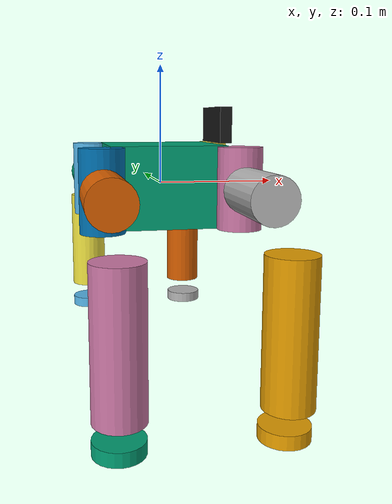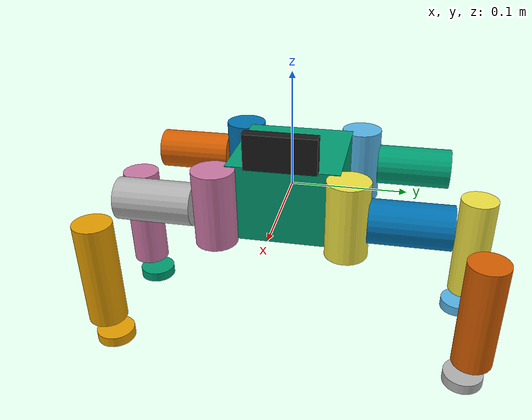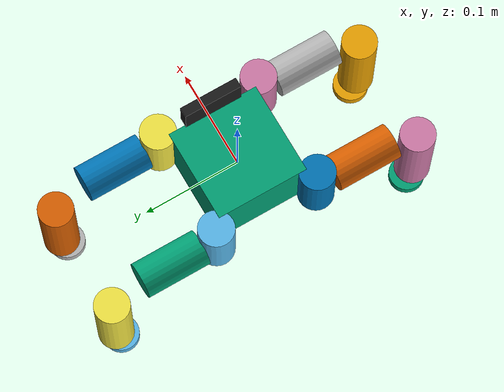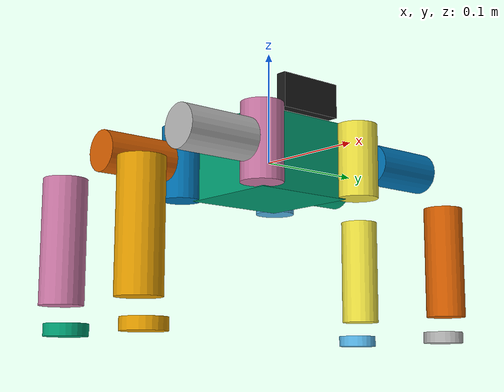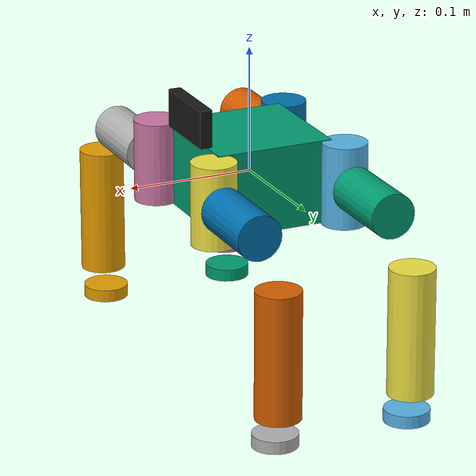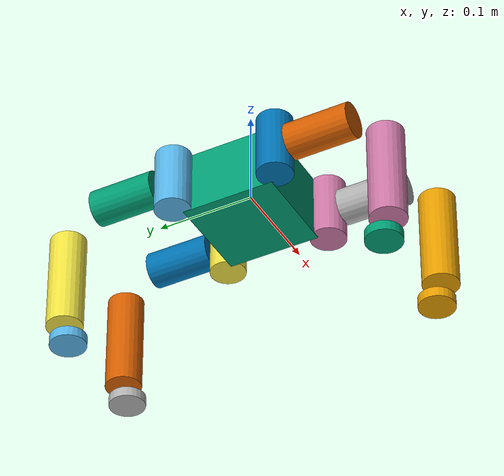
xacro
<?xml version="1.0" encoding="utf-8"?>

<robot xmlns:xacro="http://www.ros.org/wiki/xacro" name="spiderbytes_v8">
<xacro:arg name="ros2_control_yaml" default=""/>
<xacro:include filename="$(find spiderbytes)/urdf/accessories/camera.urdf" />
  <!-- ================= BASE ================= -->
  <link name="base_link">
 <visual>
    <origin xyz="0 0 0" rpy="1.5708 0 0" />
    <geometry>
      <box size="0.095 0.067221 0.095"/>
    </geometry>
  </visual>
  <collision>
    <origin xyz="0 0 0" rpy="1.5708 0 0" />
    <geometry>
      <box size="0.095 0.067221 0.095"/>
    </geometry>
  </collision>
  <inertial>
    <origin xyz="0 0 0" rpy="1.5708 0 0" />
    <mass value="5.0"/>
    <inertia
      ixx="0.0221"
      iyy="0.0193"
      izz="0.0221"
      ixy="0"
      ixz="0"
      iyz="0"/>
  </inertial>
</link>

  <!-- HIP -->
  <link name="hip_fl">
    <visual>
    <geometry>
      <cylinder radius="0.018" length="0.066"/>
    </geometry>
  </visual>
  <collision>
    <geometry>
      <cylinder radius="0.018" length="0.066"/>
    </geometry>
  </collision>
  <inertial>
    <origin xyz="0 0 0"/>
    <mass value="0.2"/>
    <inertia
      ixx="0.000073"
      iyy="0.000072"
      izz="0.000072"
      ixy="0"
      ixz="0"
      iyz="0"/>
  </inertial>

  </link>

  <joint name="hip_joint_fl" type="revolute">
    <parent link="base_link"/>
    <child link="hip_fl"/>
    <origin xyz="0.055 0.055 0" rpy="0 0 1.5708"/>
    <axis xyz="0 0 1"/>
    <limit lower="-1.57" upper="1.57" effort="100" velocity="100"/>
  </joint>

  <!-- THIGH -->
  <link name="thigh_fl">
    <visual>
    <origin xyz="0.025 0 0" rpy="0 1.5708 0" />
    <geometry>
      <cylinder radius="0.018" length="0.066"/>
    </geometry>
  </visual>
  <collision>
      <origin xyz="0.025 0 0" rpy="0 1.5708 0"/>
    <geometry>
      <cylinder radius="0.018" length="0.066"/>
    </geometry>
  </collision>
  <inertial>
    <origin xyz="0 0 0" rpy="0 1.5708 0"/>
    <mass value="0.2"/>
    <inertia
      ixx="0.000073"
      iyy="0.000072"
      izz="0.000072"
      ixy="0"
      ixz="0"
      iyz="0"/>
  </inertial>

  </link>

  <joint name="knee_joint_fl" type="revolute">
    <parent link="hip_fl"/>
    <child link="thigh_fl"/>
    <origin xyz="0.025 0 0"/>
    <axis xyz="0 1 0"/>
    <limit lower="-1.5708" upper="1.5708" effort="100" velocity="100"/>
  </joint>

  <!-- LEG -->
  <link name="leg_fl">
    <visual>
    <origin xyz="0.045 0 -0.035"/>
    <geometry>
      <cylinder radius="0.018" length="0.102"/>
    </geometry>
  </visual>
  <collision>
  <origin xyz="0.045 0 -0.035"/>
    <geometry>
      <cylinder radius="0.018" length="0.102"/>
    </geometry>
  </collision>
  <inertial>
    <origin xyz="0 0 0" rpy="0 1.5708 0"/>
    <mass value="0.25"/>
    <inertia
      ixx="0.000045"
      iyy="0.00214525"
      izz="0.00214525"
      ixy="0"
      ixz="0"
      iyz="0"/>
  </inertial>

  </link>

  <joint name="leg_joint_fl" type="revolute">
    <parent link="thigh_fl"/>
    <child link="leg_fl"/>
    <origin xyz="0.045 0 -0.045"/>
    <axis xyz="0 1 0"/>
    <limit lower="-1.5708" upper="1.5708" effort="100" velocity="100"/>
  </joint>

  <!-- FRONT RIGHT -->
  <joint name="hip_joint_fr" type="revolute">
    <parent link="base_link"/>
    <child link="hip_fr"/>
    <origin xyz="0.055 -0.055 0" rpy="0 0 -1.5708"/>
    <axis xyz="0 0 1"/>
    <limit lower="-1.5708" upper="1.5708" effort="100" velocity="100"/>
  </joint>
  <link name="hip_fr">
   <visual>
    <geometry>
      <cylinder radius="0.018" length="0.066"/>
    </geometry>
  </visual>
  <collision>
    <geometry>
      <cylinder radius="0.018" length="0.066"/>
    </geometry>
  </collision>
  <inertial>
    <origin xyz="0 0 0"/>
    <mass value="0.2"/>
    <inertia
      ixx="0.000073"
      iyy="0.000072"
      izz="0.000072"
      ixy="0"
      ixz="0"
      iyz="0"/>
  </inertial>
    </link>

  <joint name="knee_joint_fr" type="revolute">
    <parent link="hip_fr"/>
    <child link="thigh_fr"/>
    <origin xyz="0.025 0 0"/>
    <axis xyz="0 1 0"/>
    <limit lower="-1.5708" upper="1.5708" effort="100" velocity="100"/>
  </joint>
  <link name="thigh_fr"> <visual>
  <origin xyz="0.025 0 0" rpy="0 1.5708 0"/>
    <geometry>
      <cylinder radius="0.018" length="0.066"/>
    </geometry>
  </visual>
  <collision>
   <origin xyz="0.025 0 0" rpy="0 1.5708 0"/>
    <geometry>
      <cylinder radius="0.018" length="0.066"/>
    </geometry>
  </collision>
  <inertial>
    <origin xyz="0 0 0"/>
    <mass value="0.2"/>
    <inertia
      ixx="0.000073"
      iyy="0.000072"
      izz="0.000072"
      ixy="0"
      ixz="0"
      iyz="0"/>
  </inertial>
  </link>

  <joint name="leg_joint_fr" type="revolute">
    <parent link="thigh_fr"/>
    <child link="leg_fr"/>
    <origin xyz="0.045 0 -0.045"/>
    <axis xyz="0 1 0"/>
    <limit lower="-1.5708" upper="1.5708" effort="100" velocity="100"/>
  </joint>
  <link name="leg_fr"> <visual>
 <origin xyz="0.045 0 -0.035"/>
    <geometry>
      <cylinder radius="0.018" length="0.102"/>
    </geometry>
  </visual>
  <collision>
 <origin xyz="0.045 0 -0.035"/>
    <geometry>
      <cylinder radius="0.018" length="0.102"/>
    </geometry>
  </collision>
  <inertial>
    <origin xyz="0 0 0" rpy="0 1.5708 0"/>
    <mass value="0.25"/>
    <inertia
      ixx="0.000045"
      iyy="0.00214525"
      izz="0.00214525"
      ixy="0"
      ixz="0"
      iyz="0"/>
  </inertial>
  </link>

  <!-- REAR LEFT -->
  <joint name="hip_joint_rl" type="revolute">
    <parent link="base_link"/>
    <child link="hip_rl"/>
    <origin xyz="-0.055 0.055 0" rpy="0 0 1.5708"/>
    <axis xyz="0 0 1"/>
    <limit lower="-1.5708" upper="1.5708" effort="100" velocity="100"/>
  </joint>
  <link name="hip_rl"><visual>
    <geometry>
      <cylinder radius="0.018" length="0.066"/>
    </geometry>
  </visual>
  <collision>
    <geometry>
      <cylinder radius="0.018" length="0.066"/>
    </geometry>
  </collision>
  <inertial>
    <origin xyz="0 0 0"/>
    <mass value="0.2"/>
    <inertia
      ixx="0.000073"
      iyy="0.000072"
      izz="0.000072"
      ixy="0"
      ixz="0"
      iyz="0"/>
  </inertial>
  </link>

  <joint name="knee_joint_rl" type="revolute">
    <parent link="hip_rl"/>
    <child link="thigh_rl"/>
    <origin xyz="0.025 0 0"/>
    <axis xyz="0 1 0"/>
    <limit lower="-1.5708" upper="1.5708" effort="100" velocity="100"/>
  </joint>
  <link name="thigh_rl"> <visual>
  <origin xyz="0.025 0 0" rpy="0 1.5708 0"/>
    <geometry>
      <cylinder radius="0.018" length="0.066"/>
    </geometry>
  </visual>
  <collision>
   <origin xyz="0.025 0 0" rpy="0 1.5708 0"/>
    <geometry>
      <cylinder radius="0.018" length="0.066"/>
    </geometry>
  </collision>
  <inertial>
    <origin xyz="0 0 0" rpy="0 1.5708 0"/>
    <mass value="0.2"/>
    <inertia
      ixx="0.000073"
      iyy="0.000072"
      izz="0.000072"
      ixy="0"
      ixz="0"
      iyz="0"/>
  </inertial>
  </link>

  <joint name="leg_joint_rl" type="revolute">
    <parent link="thigh_rl"/>
    <child link="leg_rl"/>
       <origin xyz="0.045 0 -0.045"/>

    <axis xyz="0 1 0"/>
    <limit lower="-1.5708" upper="1.5708" effort="100" velocity="100"/>
  </joint>
  <link name="leg_rl"> <visual>
  <origin xyz="0.045 0 -0.035"/>
    <geometry>
      <cylinder radius="0.018" length="0.102"/>
    </geometry>
  </visual>
  <collision>
   <origin xyz="0.045 0 -0.035"/>
    <geometry>
      <cylinder radius="0.018" length="0.102"/>
    </geometry>
  </collision>
  <inertial>
    <origin xyz="0 0 0" rpy="0 1.5708 0"/>
    <mass value="0.25"/>
    <inertia
      ixx="0.000045"
      iyy="0.00214525"
      izz="0.00214525"
      ixy="0"
      ixz="0"
      iyz="0"/>
  </inertial>
  </link>

  <!-- REAR RIGHT -->
  <joint name="hip_joint_rr" type="revolute">
    <parent link="base_link"/>
    <child link="hip_rr"/>
    <origin xyz="-0.055 -0.055 0" rpy="0 0 -1.5708"/>
    <axis xyz="0 0 1"/>
    <limit lower="-1.5708" upper="1.5708" effort="100" velocity="100"/>
  </joint>
  <link name="hip_rr"><visual>
    <geometry>
      <cylinder radius="0.018" length="0.066"/>
    </geometry>
  </visual>
  <collision>
    <geometry>
      <cylinder radius="0.018" length="0.066"/>
    </geometry>
  </collision>
  <inertial>
    <origin xyz="0 0 0"/>
    <mass value="0.2"/>
    <inertia
      ixx="0.000073"
      iyy="0.000072"
      izz="0.000072"
      ixy="0"
      ixz="0"
      iyz="0"/>
  </inertial>
  </link>

  <joint name="knee_joint_rr" type="revolute">
    <parent link="hip_rr"/>
    <child link="thigh_rr"/>
    <origin xyz="0.025 0 0"/>
    <axis xyz="0 1 0"/>
    <limit lower="-1.5708" upper="1.5708" effort="100" velocity="100"/>
  </joint>
  <link name="thigh_rr"> <visual>
  <origin xyz="0.025 0 0" rpy="0 1.5708 0"/>
    <geometry>
      <cylinder radius="0.018" length="0.066"/>
    </geometry>
  </visual>
  <collision>
   <origin xyz="0.025 0 0" rpy="0 1.5708 0"/>
    <geometry>
      <cylinder radius="0.018" length="0.066"/>
    </geometry>
  </collision>
  <inertial>
    <origin xyz="0 0 0" rpy="0 1.5708 0"/>
    <mass value="0.2"/>
    <inertia
      ixx="0.000073"
      iyy="0.000072"
      izz="0.000072"
      ixy="0"
      ixz="0"
      iyz="0"/>
  </inertial>
  </link>

  <joint name="leg_joint_rr" type="revolute">
    <parent link="thigh_rr"/>
    <child link="leg_rr"/>
        <origin xyz="0.045 0 -0.045"/>

    <axis xyz="0 1 0"/>
    <limit lower="-1.5708" upper="1.5708" effort="100" velocity="100"/>
  </joint>
  <link name="leg_rr"> <visual>
    <origin xyz="0.045 0 -0.035"/>

    <geometry>
      <cylinder radius="0.018" length="0.102"/>
    </geometry>
  </visual>
  <collision>
    <origin xyz="0.045 0 -0.035"/>

    <geometry>
      <cylinder radius="0.018" length="0.102"/>
    </geometry>
  </collision>
  <inertial>
    <origin xyz="0 0 0" rpy="0 1.5708 0"/>
    <mass value="0.25"/>
    <inertia
      ixx="0.000045"
      iyy="0.00214525"
      izz="0.00214525"
      ixy="0"
      ixz="0"
      iyz="0"/>
  </inertial>
  </link>
<link name="foot_fl">
  <collision>
    <!-- Put it at the tip/bottom of your leg -->
    <geometry>

      <cylinder radius="0.018" length="0.01"/>
    </geometry>
  </collision>
  <visual>
    <geometry>

     <cylinder radius="0.018" length="0.01"/>
    </geometry>
  </visual>
  <inertial>
    <mass value="0.02"/>
    <inertia ixx="1e-5" iyy="1e-5" izz="1e-5" ixy="0" ixz="0" iyz="0"/>
  </inertial>
</link>

<link name="foot_fr">
  <collision>
    <!-- Put it at the tip/bottom of your leg -->
    <geometry>

     <cylinder radius="0.018" length="0.01"/>
    </geometry>
  </collision>
  <visual>
    <geometry>

      <cylinder radius="0.018" length="0.01"/>
    </geometry>
  </visual>
  <inertial>
    <mass value="0.02"/>
    <inertia ixx="1e-5" iyy="1e-5" izz="1e-5" ixy="0" ixz="0" iyz="0"/>
  </inertial>
</link>

<link name="foot_rl">
  <collision>
    <!-- Put it at the tip/bottom of your leg -->
    <geometry>

      <cylinder radius="0.018" length="0.01"/>
    </geometry>
  </collision>
  <visual>
    <geometry>

     <cylinder radius="0.018" length="0.01"/>
    </geometry>
  </visual>
  <inertial>
    <mass value="0.02"/>
    <inertia ixx="1e-5" iyy="1e-5" izz="1e-5" ixy="0" ixz="0" iyz="0"/>
  </inertial>
</link>

<link name="foot_rr">
  <collision>
    <!-- Put it at the tip/bottom of your leg -->
    <geometry>
     <cylinder radius="0.018" length="0.01"/>
    </geometry>
  </collision>
  <visual>
    <geometry>

      <cylinder radius="0.018" length="0.01"/>
    </geometry>
  </visual>
  <inertial>
    <mass value="0.02"/>
    <inertia ixx="1e-5" iyy="1e-5" izz="1e-5" ixy="0" ixz="0" iyz="0"/>
  </inertial>
</link>

<joint name="foot_joint_fl" type="continuous">
  <parent link="leg_fl"/>
  <child link="foot_fl"/>
  <axis xyz="1 0 0"/>
  <origin xyz="0.040 0 -0.105" rpy="0 0 0"/>
</joint>
<joint name="foot_joint_fr" type="continuous">
  <parent link="leg_fr"/>
  <child link="foot_fr"/>
  <axis xyz="-1 0 0"/>
  <origin xyz="0.040 0 -0.105" rpy="0 0 0"/>
</joint>
<joint name="foot_joint_rl" type="continuous">
  <parent link="leg_rl"/>
  <child link="foot_rl"/>
  <axis xyz="1 0 0"/>
  <origin xyz="0.040 0 -0.105" rpy="0 0 0"/>
</joint>
<joint name="foot_joint_rr" type="continuous">
  <parent link="leg_rr"/>
  <child link="foot_rr"/>
  <axis xyz="-1 0 0"/>
  <origin xyz="0.040 0 -0.105" rpy="0 0 0"/>
</joint>

  <gazebo reference="foot_fl"><mu1>5</mu1><mu2>5</mu2></gazebo>
  <gazebo reference="foot_fr"><mu1>5</mu1><mu2>5</mu2></gazebo>
  <gazebo reference="foot_rr"><mu1>5</mu1><mu2>5</mu2></gazebo>
  <gazebo reference="foot_rl"><mu1>5</mu1><mu2>5</mu2></gazebo>

    <gazebo>
        <plugin name="ignition::gazebo::systems::DiffDrive" filename="ignition-gazebo-diff-drive-system">
            <num_wheel_pairs>2</num_wheel_pairs>
            <!-- Wheel Information -->
            <left_joint>foot_joint_fl</left_joint>
            <left_joint>foot_joint_rl</left_joint>
            <right_joint>foot_joint_fr</right_joint>
            <right_joint>foot_joint_rr</right_joint>
            <wheel_separation>0.26</wheel_separation>
            <wheel_radius>0.018</wheel_radius>

            <!-- Limits -->
            <max_linear_acceleration>5</max_linear_acceleration>
            <min_linear_acceleration>-5</min_linear_acceleration>
            <max_angular_acceleration>4</max_angular_acceleration>
            <min_angular_acceleration>-4</min_angular_acceleration>

            <max_linear_velocity>5.0</max_linear_velocity>
            <min_linear_velocity>-5.0</min_linear_velocity>
            <max_angular_velocity>4.0</max_angular_velocity>
            <min_angular_velocity>-4.0</min_angular_velocity>
            <!-- Output -->
            <frame_id>odom</frame_id>
            <child_frame_id>base_link</child_frame_id>

            <!-- Topics -->
            <topic>/cmd_vel</topic>
            <odom_topic>/odometry/wheels</odom_topic>
            <tf_topic>/tf_gazebo</tf_topic>

        </plugin>

        <plugin filename="ignition-gazebo-joint-state-publisher-system" name="ignition::gazebo::systems::JointStatePublisher">
            <topic>/joint_states</topic>
        </plugin>
    </gazebo>
  <ros2_control name="spiderbytes_system" type="system">
    <hardware>
      <plugin>gz_ros2_control/GazeboSimSystem</plugin>
    </hardware>

    <joint name="hip_joint_fl"><command_interface name="position"/><state_interface name="position"/><state_interface name="velocity"/></joint>
    <joint name="hip_joint_fr"><command_interface name="position"/><state_interface name="position"/><state_interface name="velocity"/></joint>
    <joint name="hip_joint_rr"><command_interface name="position"/><state_interface name="position"/><state_interface name="velocity"/></joint>
    <joint name="hip_joint_rl"><command_interface name="position"/><state_interface name="position"/><state_interface name="velocity"/></joint>

    <joint name="knee_joint_fl"><command_interface name="position"/><state_interface name="position"/><state_interface name="velocity"/></joint>
    <joint name="knee_joint_fr"><command_interface name="position"/><state_interface name="position"/><state_interface name="velocity"/></joint>
    <joint name="knee_joint_rr"><command_interface name="position"/><state_interface name="position"/><state_interface name="velocity"/></joint>
    <joint name="knee_joint_rl"><command_interface name="position"/><state_interface name="position"/><state_interface name="velocity"/></joint>

    <joint name="leg_joint_rr"><command_interface name="position"/><state_interface name="position"/><state_interface name="velocity"/></joint>
    <joint name="leg_joint_rl"><command_interface name="position"/><state_interface name="position"/><state_interface name="velocity"/></joint>
    <joint name="leg_joint_fr"><command_interface name="position"/><state_interface name="position"/><state_interface name="velocity"/></joint>
    <joint name="leg_joint_fl"><command_interface name="position"/><state_interface name="position"/><state_interface name="velocity"/></joint>
  </ros2_control>
  <gazebo>
    <plugin filename="gz_ros2_control-system" name="gz_ros2_control::GazeboSimROS2ControlPlugin">
      <parameters>$(arg ros2_control_yaml)</parameters>
    </plugin>
  </gazebo>
</robot>

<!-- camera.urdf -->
<robot xmlns:xacro="http://www.ros.org/wiki/xacro" name="spider_camera">
    <xacro:property name="wheel_x_offset" value="0.05" />

      <link name="camera_link">
        <inertial>
          <origin xyz="0 0 0" rpy="0 0 0"/>
          <mass value="0.01"/>
          <inertia ixx="1e-6" ixy="0" ixz="0" iyy="1e-6" iyz="0" izz="1e-6"/>
        </inertial>

        <visual>
          <origin xyz="0 0 0" rpy="1.5708 0 1.5708"/>
          <geometry>
            <box size="0.06 0.03 0.01"/>
          </geometry>
          <material name="black">
            <color rgba="0.1 0.1 0.1 1.0"/>
          </material>
        </visual>

        <collision>
          <origin xyz="0 0 0" rpy="1.5708 0 1.5708"/>
          <geometry>
            <box size="0.03 0.03 0.02"/>
          </geometry>
        </collision>
      </link>

    <!-- Joint from head to camera - mounted at front of head -->
    <joint name="camera_joint" type="fixed">
      <origin xyz="${wheel_x_offset} 0 0.05" rpy="0 0 0"/>
      <parent link="base_link"/>
      <child link="camera_link"/>
    </joint>

    <joint name="camera_optical_joint" type="fixed">
        <origin xyz="0 0.0 0.0" rpy="1.5708 0 1.5708" />
        <parent link="camera_link" />
        <child link="camera_link_optical" />
    </joint>

  <link name="camera_link_optical"></link>
 <gazebo reference="camera_link">
      <sensor name="camera" type="camera">
        <pose>0 0 0 0 0 0</pose>
        <always_on>1</always_on>
        <topic>camera</topic>
        <visualize>true</visualize>
        <update_rate>10</update_rate>
        <camera>
          <horizontal_fov>1.745</horizontal_fov>
          <image>
            <format>R8G8B8</format>
            <width>1280</width>
            <height>720</height>
          </image>
          <clip>
            <near>0.05</near>
            <far>10.0</far>
          </clip>
        </camera>
      </sensor>
  </gazebo>
 <gazebo>
        <plugin filename="libignition-gazebo-sensors-system.so" name="ignition::gazebo::systems::Sensors">
            <render_engine>ogre2</render_engine>
        </plugin>
    </gazebo>
</robot>
